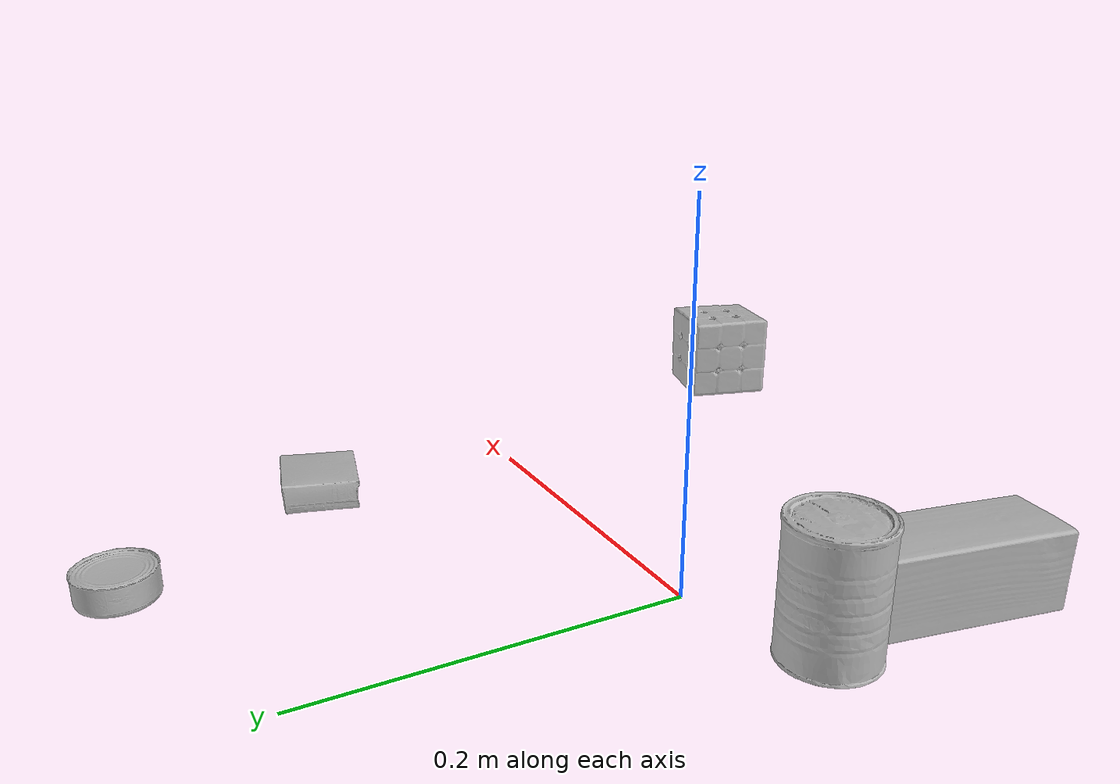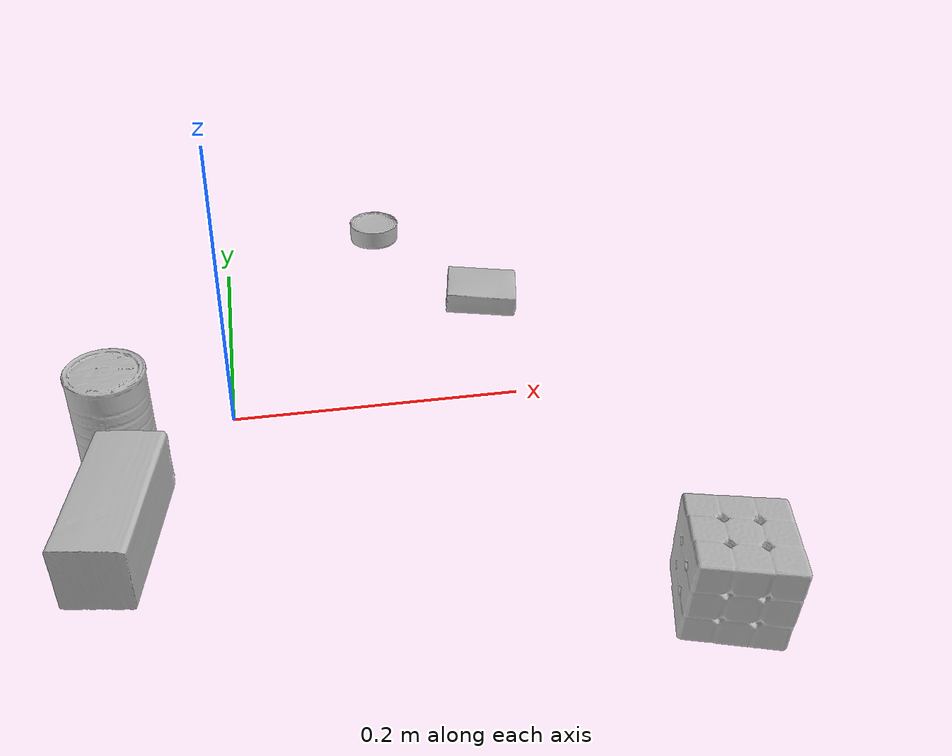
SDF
<sdf version="1.4">
  <world name="default">
    <light name="light1" type="point">
      <pose>0 0 1 0 0 0</pose>
      <diffuse>3 3 3 1</diffuse>
      <specular>3 3 3 1</specular>
    </light>
    <light name="light2" type="point">
      <pose>0 0.5 2 0 0 0</pose>
      <diffuse>1 1 1 1</diffuse>
      <specular>1 1 1 1</specular>
    </light>
    <light name="light3" type="point">
      <pose>0 0.5 2 0 0 0</pose>
      <diffuse>3 3 3 1</diffuse>
      <specular>3 3 3 1</specular>
    </light>
    <scene>
      <ambient>0.7 0.7 0.7</ambient>
    </scene>
    <model name="box1">
      <link name="link_box1">
        <collision name="default">
          <geometry>
            <mesh>
              <uri>model://rubiks_cube/collision_meshes/collision.obj</uri>
              <scale>1.0 1.0 1.0</scale>
            </mesh>
          </geometry>
          <surface>
            <friction>
              <ode>
                <mu>0.5</mu>
                <mu2>0.5</mu2>
              </ode>
            </friction>
          <contact>
        <ode>
            <max_vel>0</max_vel>
            <min_depth>0.0001</min_depth>
            <kp>1e8</kp>
        </ode>
    </contact></surface>
        </collision>
        <visual name="default">
          <geometry>
            <mesh>
              <uri>model://rubiks_cube/visual_meshes/visual.dae</uri>
              <scale>1.0 1.0 1.0</scale>
            </mesh>
          </geometry>
        </visual>
        <inertial>
          <mass>0.19534927606582642</mass>
          <pose>2.6721041649580002e-05 5.256967051536776e-05 -7.264316082000732e-06 -0.05467254413799041 -0.09813991388320625 -0.034457004790174134</pose>
          <inertia>
            <ixx>0.0001079436</ixx>
            <iyy>0.00010744019</iyy>
            <izz>0.000108838074</izz>
            <ixy>0</ixy>
            <ixz>0</ixz>
            <iyz>0</iyz>
          </inertia>
        </inertial>
      </link>
      <pose>0.26409077644348145 -0.21303269267082214 0.028678998351097107 -2.4041335250805003e-06 2.6106867551060174e-07 1.306957769413053</pose>
    </model>
    <model name="box2">
      <link name="link_box2">
        <collision name="default">
          <geometry>
            <mesh>
              <uri>model://pudding_box/collision_meshes/collision.obj</uri>
              <scale>0.5 0.5 0.5</scale>
            </mesh>
          </geometry>
          <surface>
            <friction>
              <ode>
                <mu>0.5</mu>
                <mu2>0.5</mu2>
              </ode>
            </friction>
          <contact>
        <ode>
            <max_vel>0</max_vel>
            <min_depth>0.0001</min_depth>
            <kp>1e8</kp>
        </ode>
    </contact></surface>
        </collision>
        <visual name="default">
          <geometry>
            <mesh>
              <uri>model://pudding_box/visual_meshes/visual.dae</uri>
              <scale>0.5 0.5 0.5</scale>
            </mesh>
          </geometry>
        </visual>
        <inertial>
          <mass>0.04727919027209282</mass>
          <pose>0.00024474109522998333 0.00040339428232982755 -0.0002594413817860186 0.0052131013240192415 -0.0066037977924420415 0.020079828889419827</pose>
          <inertia>
            <ixx>1.3361672e-05</ixx>
            <iyy>8.9898285e-06</iyy>
            <izz>1.9732002e-05</izz>
            <ixy>0</ixy>
            <ixz>0</ixz>
            <iyz>0</iyz>
          </inertia>
        </inertial>
      </link>
      <pose>0.20265428721904755 0.12601721286773682 0.009862903505563736 0.02234852697578008 -0.01139173304675032 1.3437999823545363</pose>
    </model>
    <model name="box3">
      <link name="link_box3">
        <collision name="default">
          <geometry>
            <mesh>
              <uri>model://wood_block/collision_meshes/collision.obj</uri>
              <scale>0.5 0.5 0.5</scale>
            </mesh>
          </geometry>
          <surface>
            <friction>
              <ode>
                <mu>0.5</mu>
                <mu2>0.5</mu2>
              </ode>
            </friction>
          <contact>
        <ode>
            <max_vel>0</max_vel>
            <min_depth>0.0001</min_depth>
            <kp>1e8</kp>
        </ode>
    </contact></surface>
        </collision>
        <visual name="default">
          <geometry>
            <mesh>
              <uri>model://wood_block/visual_meshes/visual.dae</uri>
              <scale>0.5 0.5 0.5</scale>
            </mesh>
          </geometry>
        </visual>
        <inertial>
          <mass>0.3041442632675171</mass>
          <pose>-2.9066577553749084e-06 -0.000285404734313488 0.00013204291462898254 -0.05220823380361383 -0.0051926957206686235 -0.0068613778665259926</pose>
          <inertia>
            <ixx>0.00010174775</ixx>
            <iyy>0.0003214212</iyy>
            <izz>0.0003202189</izz>
            <ixy>0</ixy>
            <ixz>0</ixz>
            <iyz>0</iyz>
          </inertia>
        </inertial>
      </link>
      <pose>-0.06881564855575562 -0.10919832438230515 0.0226292721927166 -0.005208582228805194 0.005718718091818103 1.3950598598783714</pose>
    </model>
    <model name="can1">
      <link name="link_can1">
        <collision name="default">
          <geometry>
            <mesh>
              <uri>model://master_chef_can/collision_meshes/collision.obj</uri>
              <scale>0.5 0.5 0.5</scale>
            </mesh>
          </geometry>
          <surface>
            <friction>
              <ode>
                <mu>0.5</mu>
                <mu2>0.5</mu2>
              </ode>
            </friction>
          <contact>
        <ode>
            <max_vel>0</max_vel>
            <min_depth>0.0001</min_depth>
            <kp>1e8</kp>
        </ode>
    </contact></surface>
        </collision>
        <visual name="default">
          <geometry>
            <mesh>
              <uri>model://master_chef_can/visual_meshes/visual.dae</uri>
              <scale>0.5 0.5 0.5</scale>
            </mesh>
          </geometry>
        </visual>
        <inertial>
          <mass>0.18719419836997986</mass>
          <pose>-4.661963976104744e-05 1.3926856468060578e-07 -5.0798327720258385e-05 -0.0017995099067415357 0.0006479319374111454 -0.6102582770449616</pose>
          <inertia>
            <ixx>0.0001098703</ixx>
            <iyy>0.00010906167</iyy>
            <izz>6.071174e-05</izz>
            <ixy>0</ixy>
            <ixz>0</ixz>
            <iyz>0</iyz>
          </inertia>
        </inertial>
      </link>
      <pose>-0.0739436075091362 -0.029398420825600624 0.03530198708176613 -1.5536082806357874e-06 -9.708426589286749e-07 0.5003819821157821</pose>
    </model>
    <model name="can2">
      <link name="link_can2">
        <collision name="default">
          <geometry>
            <mesh>
              <uri>model://tuna_fish_can/collision_meshes/collision.obj</uri>
              <scale>0.5 0.5 0.5</scale>
            </mesh>
          </geometry>
          <surface>
            <friction>
              <ode>
                <mu>0.5</mu>
                <mu2>0.5</mu2>
              </ode>
            </friction>
          <contact>
        <ode>
            <max_vel>0</max_vel>
            <min_depth>0.0001</min_depth>
            <kp>1e8</kp>
        </ode>
    </contact></surface>
        </collision>
        <visual name="default">
          <geometry>
            <mesh>
              <uri>model://tuna_fish_can/visual_meshes/visual.dae</uri>
              <scale>0.5 0.5 0.5</scale>
            </mesh>
          </geometry>
        </visual>
        <inertial>
          <mass>0.011327341198921204</mass>
          <pose>-2.0361354472697712e-05 -7.256336175487377e-06 -0.0005269023822620511 -0.001794480782384504 0.00017159763230480823 0.24052991368062646</pose>
          <inertia>
            <ixx>1.5314733e-06</ixx>
            <iyy>1.52509e-06</iyy>
            <izz>2.6205691e-06</izz>
            <ixy>0</ixy>
            <ixz>0</ixz>
            <iyz>0</iyz>
          </inertia>
        </inertial>
      </link>
      <pose>0.1312882900238037 0.24787020683288574 0.008520000614225864 -6.767532857248084e-09 9.390595988882135e-09 -1.0376461964132235</pose>
    </model>
  <physics type="ode">
      <max_contacts>50</max_contacts>
      <ode>
        <solver>
          <type>quick</type>
          <iters>75</iters>
        </solver>
        <constraints>
          <contact_max_correcting_vel>0</contact_max_correcting_vel>
          <contact_surface_layer>0</contact_surface_layer>
        </constraints>
      </ode>
    </physics></world>
</sdf>
